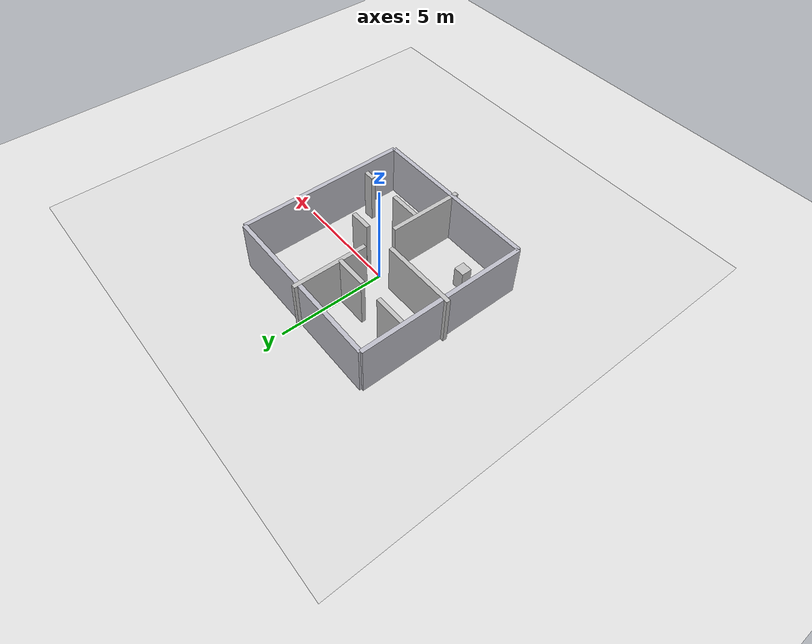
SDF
<sdf version="1.8">
 <world name="demo">
  <plugin filename="gz-sim-physics-system" name="gz::sim::systems::Physics"/>
  <plugin filename="gz-sim-sensors-system" name="gz::sim::systems::Sensors">
   <render_engine>ogre2</render_engine>
  </plugin>
  <plugin filename="gz-sim-scene-broadcaster-system" name="gz::sim::systems::SceneBroadcaster"/>
  <plugin filename="gz-sim-user-commands-system" name="gz::sim::systems::UserCommands"/>
  <light name="sun" type="directional">
   <pose>0 0 10 0 0 0</pose>
   <diffuse>0.8 0.8 0.8 1</diffuse>
   <specular>0.2 0.2 0.2 1</specular>
   <attenuation>
    <range>1000</range>
    <constant>0.9</constant>
    <linear>0.01</linear>
    <quadratic>0.001</quadratic>
   </attenuation>
   <direction>-0.5 0.1 -0.9</direction>
  </light>
  <model name="ground_plane">
   <static>true</static>
   <link name="link">
    <collision name="collision">
     <geometry><plane><normal>0 0 1</normal><size>20 20</size></plane></geometry>
    </collision>
    <visual name="visual">
     <geometry><plane><normal>0 0 1</normal><size>20 20</size></plane></geometry>
     <material>
      <ambient>0.85 0.85 0.85 1</ambient>
      <diffuse>0.85 0.85 0.85 1</diffuse>
      <specular>0.1 0.1 0.1 1</specular>
     </material>
    </visual>
   </link>
  </model>
  <model name="ceiling">
   <static>true</static>
   <pose>0 0 2.5 0 0 0</pose>
   <link name="ceiling_link">
    <collision name="collision"><geometry><box><size>20 20 0.05</size></box></geometry></collision>
    <visual name="visual">
     <geometry><box><size>20 20 0.05</size></box></geometry>
     <material>
      <ambient>0.8 0.8 0.8 0.15</ambient>
      <diffuse>0.8 0.8 0.8 0.15</diffuse>
      <specular>0.1 0.1 0.1 0.15</specular>
     </material>
     <transparency>0.7</transparency>
     <cast_shadows>false</cast_shadows>
    </visual>
   </link>
  </model>
  <model name="perimeter_north">
   <static>true</static>
   <pose>0 4 1.25 0 0 0</pose>
   <link name="link">
    <collision name="collision"><geometry><box><size>8 0.2 2.5</size></box></geometry></collision>
    <visual name="visual">
     <geometry><box><size>8 0.2 2.5</size></box></geometry>
     <material><ambient>0.7 0.7 0.75 1</ambient><diffuse>0.7 0.7 0.75 1</diffuse></material>
    </visual>
   </link>
  </model>
  <model name="perimeter_south">
   <static>true</static>
   <pose>0 -4 1.25 0 0 0</pose>
   <link name="link">
    <collision name="collision"><geometry><box><size>8 0.2 2.5</size></box></geometry></collision>
    <visual name="visual">
     <geometry><box><size>8 0.2 2.5</size></box></geometry>
     <material><ambient>0.7 0.7 0.75 1</ambient><diffuse>0.7 0.7 0.75 1</diffuse></material>
    </visual>
   </link>
  </model>
  <model name="perimeter_west">
   <static>true</static>
   <pose>-4 0 1.25 0 0 0</pose>
   <link name="link">
    <collision name="collision"><geometry><box><size>0.2 8 2.5</size></box></geometry></collision>
    <visual name="visual">
     <geometry><box><size>0.2 8 2.5</size></box></geometry>
     <material><ambient>0.7 0.7 0.75 1</ambient><diffuse>0.7 0.7 0.75 1</diffuse></material>
    </visual>
   </link>
  </model>
  <model name="perimeter_east">
   <static>true</static>
   <pose>4 0 1.25 0 0 0</pose>
   <link name="link">
    <collision name="collision"><geometry><box><size>0.2 8 2.5</size></box></geometry></collision>
    <visual name="visual">
     <geometry><box><size>0.2 8 2.5</size></box></geometry>
     <material><ambient>0.7 0.7 0.75 1</ambient><diffuse>0.7 0.7 0.75 1</diffuse></material>
    </visual>
   </link>
  </model>
  <model name="partition_v_top">
   <static>true</static>
   <pose>0 2.5 1.25 0 0 0</pose>
   <link name="link">
    <collision name="collision"><geometry><box><size>0.2 3.5 2.5</size></box></geometry></collision>
    <visual name="visual"><geometry><box><size>0.2 3.5 2.5</size></box></geometry></visual>
   </link>
  </model>
  <model name="partition_v_bottom">
   <static>true</static>
   <pose>0 -2.5 1.25 0 0 0</pose>
   <link name="link">
    <collision name="collision"><geometry><box><size>0.2 3.5 2.5</size></box></geometry></collision>
    <visual name="visual"><geometry><box><size>0.2 3.5 2.5</size></box></geometry></visual>
   </link>
  </model>
  <model name="column">
   <static>true</static>
   <pose>-2.5 -2.5 0 0 0 0</pose>
   <link name="link">
    <collision name="collision"><geometry><box><size>0.5 0.5 2.0</size></box></geometry></collision>
    <visual name="visual"><geometry><box><size>0.5 0.5 2.0</size></box></geometry></visual>
   </link>
  </model>
  <model name="partition_h_y0_left">
   <static>true</static>
   <pose>-2.5 0 1.25 0 0 0</pose>
   <link name="link">
    <collision name="collision"><geometry><box><size>3.5 0.2 2.5</size></box></geometry></collision>
    <visual name="visual"><geometry><box><size>3.5 0.2 2.5</size></box></geometry></visual>
   </link>
  </model>
  <model name="partition_h_y0_right">
   <static>true</static>
   <pose>1.25 0 1.25 0 0 0</pose>
   <link name="link">
    <collision name="collision"><geometry><box><size>1.0 0.2 2.5</size></box></geometry></collision>
    <visual name="visual"><geometry><box><size>1.0 0.2 2.5</size></box></geometry></visual>
   </link>
  </model>
  <model name="partition_h_y2_leftA">
   <static>true</static>
   <pose>-3.25 2 1.25 0 0 0</pose>
   <link name="link">
    <collision name="collision"><geometry><box><size>1.5 0.2 2.5</size></box></geometry></collision>
    <visual name="visual"><geometry><box><size>1.5 0.2 2.5</size></box></geometry></visual>
   </link>
  </model>
  <model name="partition_h_y2_leftB">
   <static>true</static>
   <pose>-0.75 2 1.25 0 0 0</pose>
   <link name="link">
    <collision name="collision"><geometry><box><size>1.5 0.2 2.5</size></box></geometry></collision>
    <visual name="visual"><geometry><box><size>1.5 0.2 2.5</size></box></geometry></visual>
   </link>
  </model>
  <model name="partition_h_y-2_rightA">
   <static>true</static>
   <pose>0.75 -2 1.25 0 0 0</pose>
   <link name="link">
    <collision name="collision"><geometry><box><size>1.5 0.2 2.5</size></box></geometry></collision>
    <visual name="visual"><geometry><box><size>1.5 0.2 2.5</size></box></geometry></visual>
   </link>
  </model>
  <model name="partition_h_y-2_rightB">
   <static>true</static>
   <pose>3.25 -2 1.25 0 0 0</pose>
   <link name="link">
    <collision name="collision"><geometry><box><size>0.5 0.2 2.5</size></box></geometry></collision>
    <visual name="visual"><geometry><box><size>0.5 0.2 2.5</size></box></geometry></visual>
   </link>
  </model>
 </world>
</sdf>
